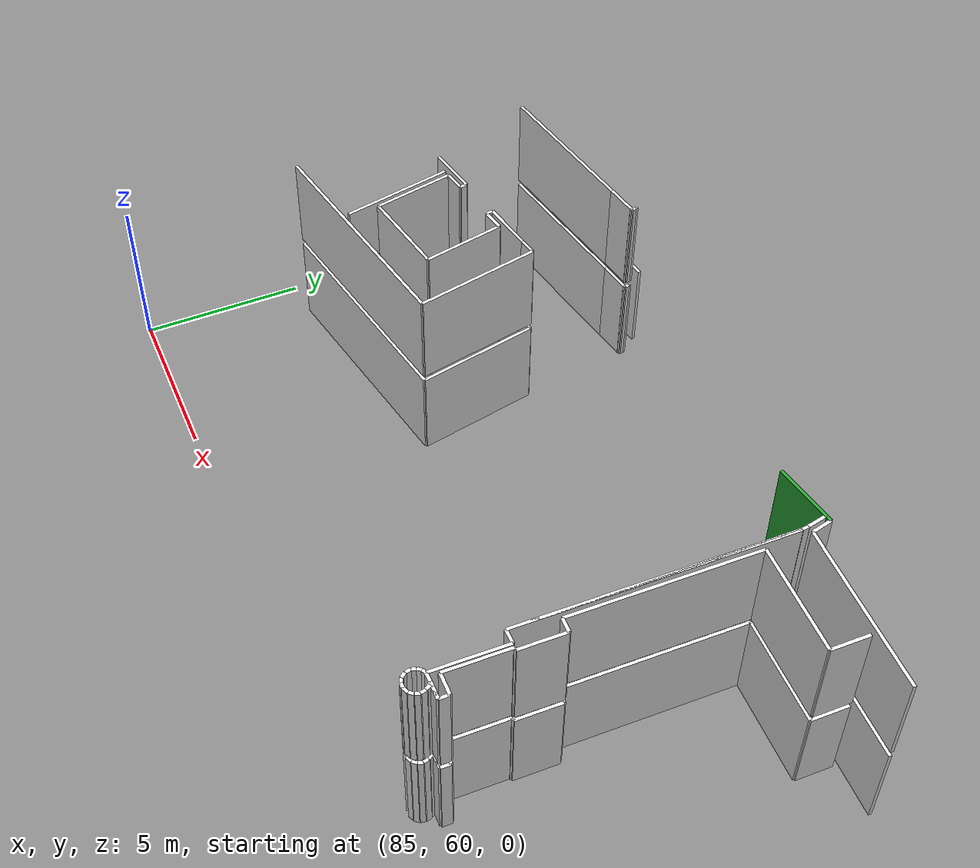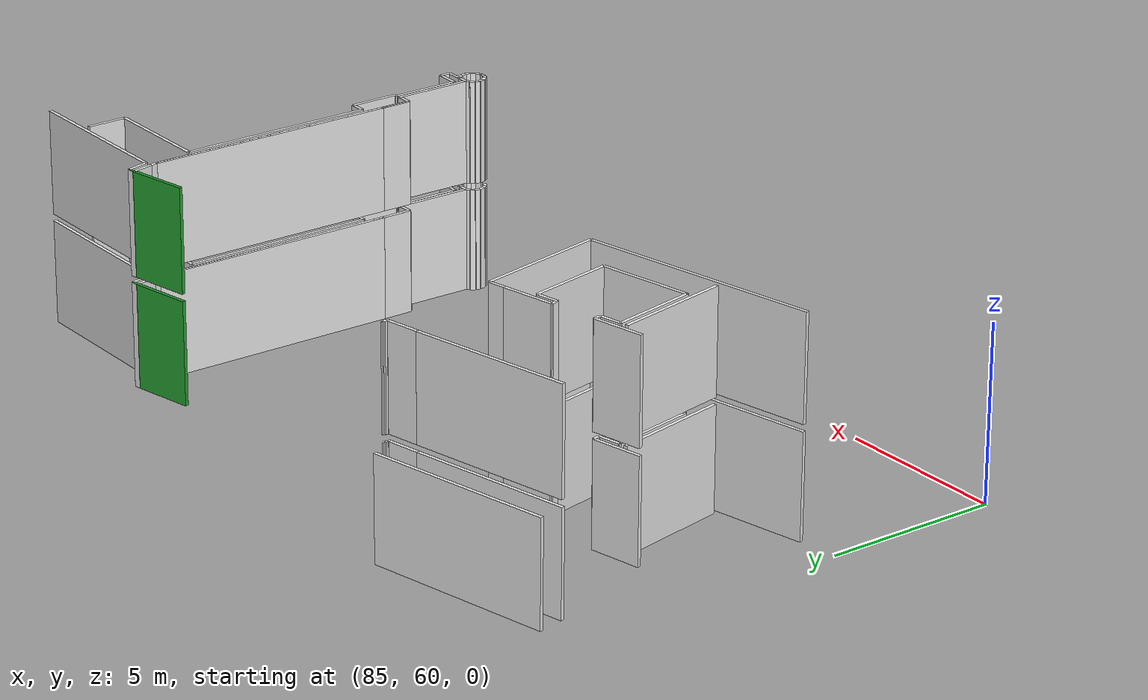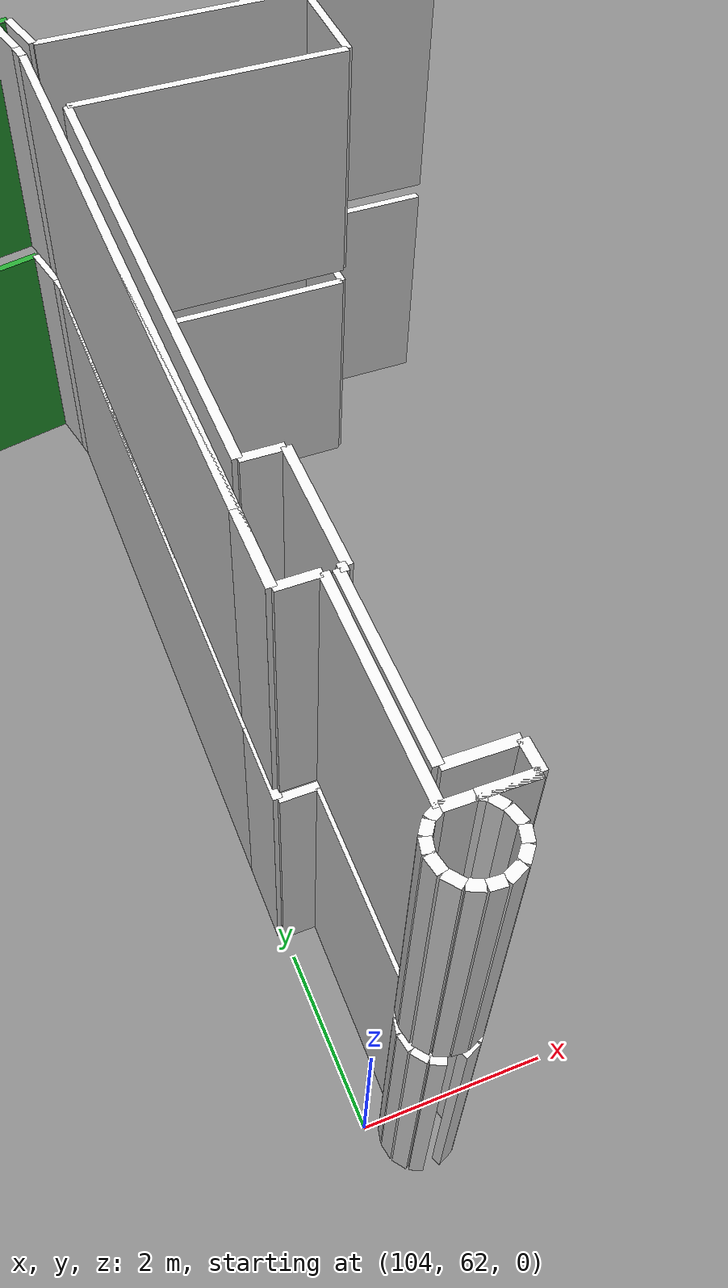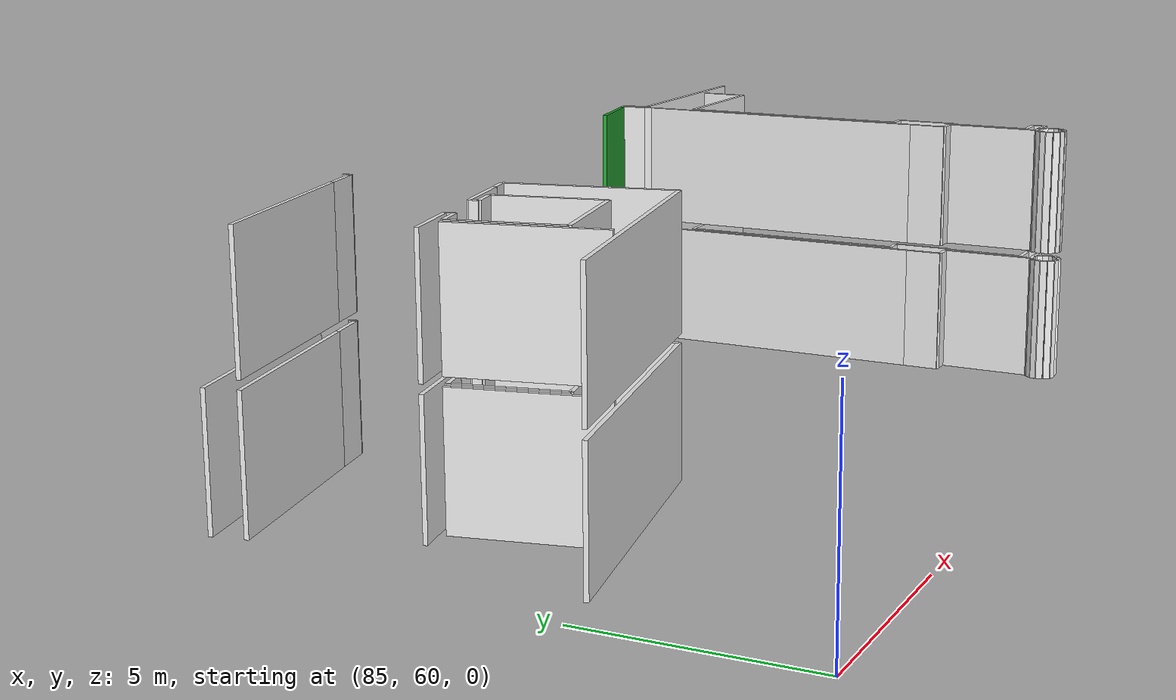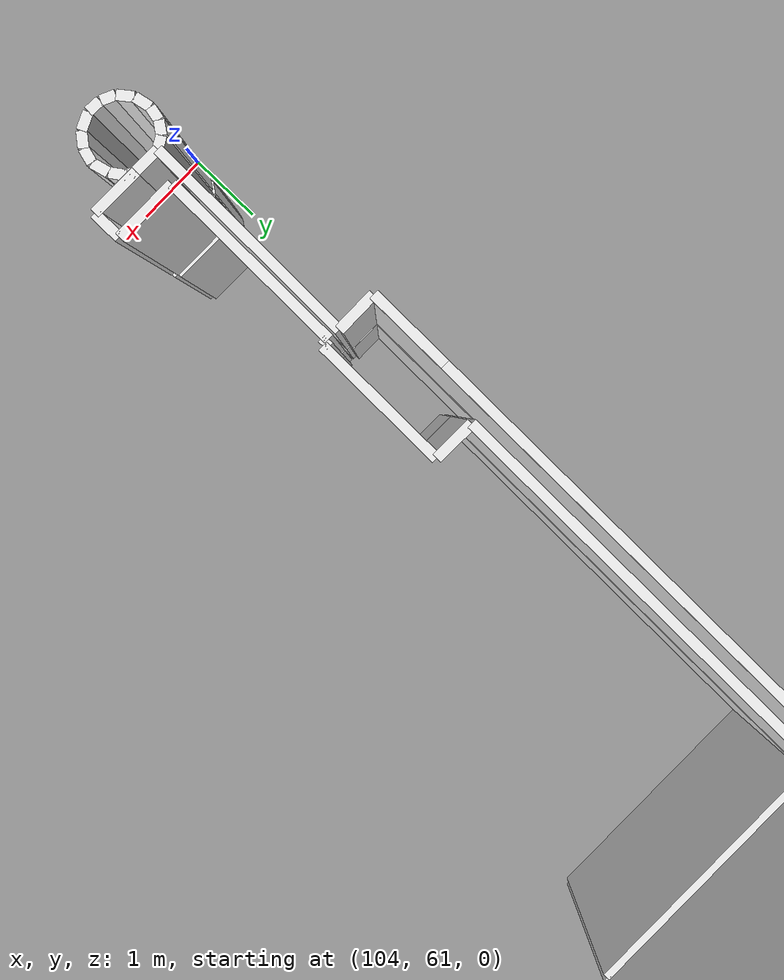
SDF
<sdf version="1.6">
 <world name="default">
  <model name="wall_103.2_73.0_0.0">
   <static>true</static>
   <pose>103.15500000014435 73.02000000025146 1.5 0 0 -2.9552965370366153</pose>
   <link name="link">
    <visual name="visual">
     <geometry><box><size>1.9436306230085285 0.1 3</size></box></geometry>
     <material>
      <script><uri>file://media/materials/scripts/gazebo.material</uri><name>Gazebo/Green</name></script>
     </material>
    </visual>
   </link>
  </model>
  <model name="wall_104.2_72.9_0.0">
   <static>true</static>
   <pose>104.17999999999302 72.9000000001397 1.5 0 0 -1.3415643935301684</pose>
   <link name="link">
    <visual name="visual">
     <geometry><box><size>0.6161168721238449 0.1 3</size></box></geometry>
     <material>
      <script><uri>file://media/materials/scripts/gazebo.material</uri><name>Gazebo/White</name></script>
     </material>
    </visual>
   </link>
  </model>
  <model name="wall_106.7_72.6_0.0">
   <static>true</static>
   <pose>106.70000000001164 72.56499999994412 1.5 0 0 -0.01428474264813742</pose>
   <link name="link">
    <visual name="visual">
     <geometry><box><size>4.900499974519937 0.1 3</size></box></geometry>
     <material>
      <script><uri>file://media/materials/scripts/gazebo.material</uri><name>Gazebo/White</name></script>
     </material>
    </visual>
   </link>
  </model>
  <model name="wall_88.4_67.5_0.0">
   <static>true</static>
   <pose>88.39999999999418 67.51500000013039 1.5 0 0 1.7664587861152812</pose>
   <link name="link">
    <visual name="visual">
     <geometry><box><size>3.394775397645977 0.1 3</size></box></geometry>
     <material>
      <script><uri>file://media/materials/scripts/gazebo.material</uri><name>Gazebo/White</name></script>
     </material>
    </visual>
   </link>
  </model>
  <model name="wall_107.5_71.8_0.0">
   <static>true</static>
   <pose>107.48499999998603 71.78000000002794 1.5 0 0 -1.579568031646505</pose>
   <link name="link">
    <visual name="visual">
     <geometry><box><size>1.1400438589359028 0.1 3</size></box></geometry>
     <material>
      <script><uri>file://media/materials/scripts/gazebo.material</uri><name>Gazebo/White</name></script>
     </material>
    </visual>
   </link>
  </model>
  <model name="wall_105.9_71.2_0.0">
   <static>true</static>
   <pose>105.875 71.22999999998137 1.5 0 0 3.1291322393040306</pose>
   <link name="link">
    <visual name="visual">
     <geometry><box><size>3.2102492114731245 0.1 3</size></box></geometry>
     <material>
      <script><uri>file://media/materials/scripts/gazebo.material</uri><name>Gazebo/White</name></script>
     </material>
    </visual>
   </link>
  </model>
  <model name="wall_104.2_68.5_0.0">
   <static>true</static>
   <pose>104.23000000001048 68.47500000009313 1.5 0 0 -1.585209743017202</pose>
   <link name="link">
    <visual name="visual">
     <geometry><box><size>5.550576546444078 0.1 3</size></box></geometry>
     <material>
      <script><uri>file://media/materials/scripts/gazebo.material</uri><name>Gazebo/White</name></script>
     </material>
    </visual>
   </link>
  </model>
  <model name="wall_104.4_65.7_0.0">
   <static>true</static>
   <pose>104.40499999999884 65.69500000006519 1.5 0 0 -0.023251623373661365</pose>
   <link name="link">
    <visual name="visual">
     <geometry><box><size>0.430116263350778 0.1 3</size></box></geometry>
     <material>
      <script><uri>file://media/materials/scripts/gazebo.material</uri><name>Gazebo/White</name></script>
     </material>
    </visual>
   </link>
  </model>
  <model name="wall_104.6_65.0_0.0">
   <static>true</static>
   <pose>104.60999999998603 64.99499999987893 1.5 0 0 -1.5851838231958704</pose>
   <link name="link">
    <visual name="visual">
     <geometry><box><size>1.390143877576424 0.1 3</size></box></geometry>
     <material>
      <script><uri>file://media/materials/scripts/gazebo.material</uri><name>Gazebo/White</name></script>
     </material>
    </visual>
   </link>
  </model>
  <model name="wall_104.6_64.3_0.0">
   <static>true</static>
   <pose>104.55999999999767 64.29999999981374 1.5 0 0 3.141592653589793</pose>
   <link name="link">
    <visual name="visual">
     <geometry><box><size>0.07999999995809048 0.1 3</size></box></geometry>
     <material>
      <script><uri>file://media/materials/scripts/gazebo.material</uri><name>Gazebo/White</name></script>
     </material>
    </visual>
   </link>
  </model>
  <model name="wall_104.5_63.3_0.0">
   <static>true</static>
   <pose>104.50500000000466 63.34499999997206 1.5 0 0 -1.5865018416432637</pose>
   <link name="link">
    <visual name="visual">
     <geometry><box><size>1.9102355872488803 0.1 3</size></box></geometry>
     <material>
      <script><uri>file://media/materials/scripts/gazebo.material</uri><name>Gazebo/White</name></script>
     </material>
    </visual>
   </link>
  </model>
  <model name="wall_104.8_62.4_0.0">
   <static>true</static>
   <pose>104.81500000000233 62.38500000000931 1.5 0 0 -0.015383402152485081</pose>
   <link name="link">
    <visual name="visual">
     <geometry><box><size>0.6500769185528055 0.1 3</size></box></geometry>
     <material>
      <script><uri>file://media/materials/scripts/gazebo.material</uri><name>Gazebo/White</name></script>
     </material>
    </visual>
   </link>
  </model>
  <model name="wall_88.7_73.8_0.0">
   <static>true</static>
   <pose>88.7050000000163 73.80000000004657 1.5 0 0 0.1955976473787338</pose>
   <link name="link">
    <visual name="visual">
     <geometry><box><size>5.4539985331744765 0.1 3</size></box></geometry>
     <material>
      <script><uri>file://media/materials/scripts/gazebo.material</uri><name>Gazebo/White</name></script>
     </material>
    </visual>
   </link>
  </model>
  <model name="wall_88.5_68.0_0.0">
   <static>true</static>
   <pose>88.51000000000931 67.99499999987893 1.5 0 0 -1.3757760594104678</pose>
   <link name="link">
    <visual name="visual">
     <geometry><box><size>2.4769537744570123 0.1 3</size></box></geometry>
     <material>
      <script><uri>file://media/materials/scripts/gazebo.material</uri><name>Gazebo/White</name></script>
     </material>
    </visual>
   </link>
  </model>
  <model name="wall_90.1_67.0_0.0">
   <static>true</static>
   <pose>90.0799999999872 67.03999999980442 1.5 0 0 0.19305405312718568</pose>
   <link name="link">
    <visual name="visual">
     <geometry><box><size>2.710350530813887 0.1 3</size></box></geometry>
     <material>
      <script><uri>file://media/materials/scripts/gazebo.material</uri><name>Gazebo/White</name></script>
     </material>
    </visual>
   </link>
  </model>
  <model name="wall_91.2_68.5_0.0">
   <static>true</static>
   <pose>91.16499999997905 68.52000000001863 1.5 0 0 1.7689799085101925</pose>
   <link name="link">
    <visual name="visual">
     <geometry><box><size>2.4887145280225713 0.1 3</size></box></geometry>
     <material>
      <script><uri>file://media/materials/scripts/gazebo.material</uri><name>Gazebo/White</name></script>
     </material>
    </visual>
   </link>
  </model>
  <model name="wall_90.6_69.7_0.0">
   <static>true</static>
   <pose>90.60000000000582 69.67500000004657 1.5 0 0 -2.9411940992193695</pose>
   <link name="link">
    <visual name="visual">
     <geometry><box><size>0.6530696747173231 0.1 3</size></box></geometry>
     <material>
      <script><uri>file://media/materials/scripts/gazebo.material</uri><name>Gazebo/White</name></script>
     </material>
    </visual>
   </link>
  </model>
  <model name="wall_88.6_69.3_0.0">
   <static>true</static>
   <pose>88.58999999999651 69.27499999990687 1.5 0 0 -2.9411940999181345</pose>
   <link name="link">
    <visual name="visual">
     <geometry><box><size>0.6530696746246286 0.1 3</size></box></geometry>
     <material>
      <script><uri>file://media/materials/scripts/gazebo.material</uri><name>Gazebo/White</name></script>
     </material>
    </visual>
   </link>
  </model>
  <model name="wall_89.6_65.8_0.0">
   <static>true</static>
   <pose>89.55999999999767 65.81000000005588 1.5 0 0 0.19515842716344076</pose>
   <link name="link">
    <visual name="visual">
     <geometry><box><size>7.013130542131383 0.1 3</size></box></geometry>
     <material>
      <script><uri>file://media/materials/scripts/gazebo.material</uri><name>Gazebo/White</name></script>
     </material>
    </visual>
   </link>
  </model>
  <model name="wall_92.6_68.4_0.0">
   <static>true</static>
   <pose>92.63000000000466 68.35000000009313 1.5 0 0 1.767157760861028</pose>
   <link name="link">
    <visual name="visual">
     <geometry><box><size>3.7928880814026247 0.1 3</size></box></geometry>
     <material>
      <script><uri>file://media/materials/scripts/gazebo.material</uri><name>Gazebo/White</name></script>
     </material>
    </visual>
   </link>
  </model>
  <model name="wall_92.0_70.2_0.0">
   <static>true</static>
   <pose>92.01500000001397 70.15999999991618 1.5 0 0 -2.9402755450289626</pose>
   <link name="link">
    <visual name="visual">
     <geometry><box><size>0.5000999900114971 0.1 3</size></box></geometry>
     <material>
      <script><uri>file://media/materials/scripts/gazebo.material</uri><name>Gazebo/White</name></script>
     </material>
    </visual>
   </link>
  </model>
  <model name="wall_91.0_70.0_0.0">
   <static>true</static>
   <pose>91.00500000000466 69.95999999996275 1.5 0 0 -2.94797066085453</pose>
   <link name="link">
    <visual name="visual">
     <geometry><box><size>1.5591343752139315 0.1 3</size></box></geometry>
     <material>
      <script><uri>file://media/materials/scripts/gazebo.material</uri><name>Gazebo/White</name></script>
     </material>
    </visual>
   </link>
  </model>
  <model name="wall_90.3_69.7_0.0">
   <static>true</static>
   <pose>90.26000000000931 69.70999999996275 1.5 0 0 -1.373400766945016</pose>
   <link name="link">
    <visual name="visual">
     <geometry><box><size>0.20396078073366466 0.1 3</size></box></geometry>
     <material>
      <script><uri>file://media/materials/scripts/gazebo.material</uri><name>Gazebo/White</name></script>
     </material>
    </visual>
   </link>
  </model>
  <model name="wall_88.9_69.4_0.0">
   <static>true</static>
   <pose>88.88999999998487 69.43999999994412 1.5 0 0 1.7681918863649329</pose>
   <link name="link">
    <visual name="visual">
     <geometry><box><size>0.2039607807222492 0.1 3</size></box></geometry>
     <material>
      <script><uri>file://media/materials/scripts/gazebo.material</uri><name>Gazebo/White</name></script>
     </material>
    </visual>
   </link>
  </model>
  <model name="wall_88.1_69.4_0.0">
   <static>true</static>
   <pose>88.13000000000466 69.39500000001863 1.5 0 0 -2.948098244273777</pose>
   <link name="link">
    <visual name="visual">
     <geometry><box><size>1.508144555394632 0.1 3</size></box></geometry>
     <material>
      <script><uri>file://media/materials/scripts/gazebo.material</uri><name>Gazebo/White</name></script>
     </material>
    </visual>
   </link>
  </model>
  <model name="wall_88.5_73.0_0.0">
   <static>true</static>
   <pose>88.48999999999069 72.98999999999069 1.5 0 0 0.19656292065681916</pose>
   <link name="link">
    <visual name="visual">
     <geometry><box><size>4.710711199031065 0.1 3</size></box></geometry>
     <material>
      <script><uri>file://media/materials/scripts/gazebo.material</uri><name>Gazebo/White</name></script>
     </material>
    </visual>
   </link>
  </model>
  <model name="wall_91.3_73.5_0.0">
   <static>true</static>
   <pose>91.26499999998487 73.54000000003725 1.5 0 0 0.19118445928953165</pose>
   <link name="link">
    <visual name="visual">
     <geometry><box><size>0.9472592041673281 0.1 3</size></box></geometry>
     <material>
      <script><uri>file://media/materials/scripts/gazebo.material</uri><name>Gazebo/White</name></script>
     </material>
    </visual>
   </link>
  </model>
  <model name="wall_91.8_73.6_0.0">
   <static>true</static>
   <pose>91.75500000000466 73.63999999989755 1.5 0 0 0.3805063771123649</pose>
   <link name="link">
    <visual name="visual">
     <geometry><box><size>0.0538516481214983 0.1 3</size></box></geometry>
     <material>
      <script><uri>file://media/materials/scripts/gazebo.material</uri><name>Gazebo/White</name></script>
     </material>
    </visual>
   </link>
  </model>
  <model name="wall_91.8_73.7_0.0">
   <static>true</static>
   <pose>91.76500000001397 73.70999999996275 1.5 0 0 1.8157749899217608</pose>
   <link name="link">
    <visual name="visual">
     <geometry><box><size>0.12369316888372806 0.1 3</size></box></geometry>
     <material>
      <script><uri>file://media/materials/scripts/gazebo.material</uri><name>Gazebo/White</name></script>
     </material>
    </visual>
   </link>
  </model>
  <model name="wall_91.8_73.8_0.0">
   <static>true</static>
   <pose>91.77499999999418 73.77499999990687 1.5 0 0 0.197395555596244</pose>
   <link name="link">
    <visual name="visual">
     <geometry><box><size>0.050990195080677016 0.1 3</size></box></geometry>
     <material>
      <script><uri>file://media/materials/scripts/gazebo.material</uri><name>Gazebo/White</name></script>
     </material>
    </visual>
   </link>
  </model>
  <model name="wall_104.0_73.2_0.0">
   <static>true</static>
   <pose>104.01999999998952 73.18500000005588 1.5 0 0 -2.9764439747593046</pose>
   <link name="link">
    <visual name="visual">
     <geometry><box><size>0.18248287594492707 0.1 3</size></box></geometry>
     <material>
      <script><uri>file://media/materials/scripts/gazebo.material</uri><name>Gazebo/White</name></script>
     </material>
    </visual>
   </link>
  </model>
  <model name="wall_104.0_72.9_0.0">
   <static>true</static>
   <pose>103.98999999999069 72.875 1.5 0 0 -1.3701434494332612</pose>
   <link name="link">
    <visual name="visual">
     <geometry><box><size>0.6020797287926647 0.1 3</size></box></geometry>
     <material>
      <script><uri>file://media/materials/scripts/gazebo.material</uri><name>Gazebo/White</name></script>
     </material>
    </visual>
   </link>
  </model>
  <model name="wall_104.1_72.5_0.0">
   <static>true</static>
   <pose>104.06500000000233 72.48500000010245 1.5 0 0 -1.4141944496240997</pose>
   <link name="link">
    <visual name="visual">
     <geometry><box><size>0.19235384056587543 0.1 3</size></box></geometry>
     <material>
      <script><uri>file://media/materials/scripts/gazebo.material</uri><name>Gazebo/White</name></script>
     </material>
    </visual>
   </link>
  </model>
  <model name="wall_104.0_68.8_0.0">
   <static>true</static>
   <pose>104.02999999999884 68.78500000014901 1.5 0 0 -1.5846650630720618</pose>
   <link name="link">
    <visual name="visual">
     <geometry><box><size>7.2106934478918046 0.1 3</size></box></geometry>
     <material>
      <script><uri>file://media/materials/scripts/gazebo.material</uri><name>Gazebo/White</name></script>
     </material>
    </visual>
   </link>
  </model>
  <model name="wall_104.0_64.7_0.0">
   <static>true</static>
   <pose>103.97499999997672 64.74500000011176 1.5 0 0 -1.5822900735191543</pose>
   <link name="link">
    <visual name="visual">
     <geometry><box><size>0.8700574694781066 0.1 3</size></box></geometry>
     <material>
      <script><uri>file://media/materials/scripts/gazebo.material</uri><name>Gazebo/White</name></script>
     </material>
    </visual>
   </link>
  </model>
  <model name="wall_104.2_64.3_0.0">
   <static>true</static>
   <pose>104.18499999999767 64.31000000005588 1.5 0 0 0.0</pose>
   <link name="link">
    <visual name="visual">
     <geometry><box><size>0.43000000005122274 0.1 3</size></box></geometry>
     <material>
      <script><uri>file://media/materials/scripts/gazebo.material</uri><name>Gazebo/White</name></script>
     </material>
    </visual>
   </link>
  </model>
  <model name="wall_104.4_63.2_0.0">
   <static>true</static>
   <pose>104.38000000000466 63.199999999953434 1.5 0 0 -1.5888123953640647</pose>
   <link name="link">
    <visual name="visual">
     <geometry><box><size>2.2203603313229805 0.1 3</size></box></geometry>
     <material>
      <script><uri>file://media/materials/scripts/gazebo.material</uri><name>Gazebo/White</name></script>
     </material>
    </visual>
   </link>
  </model>
  <model name="wall_104.3_62.1_0.0">
   <static>true</static>
   <pose>104.30499999999302 62.05999999982305 1.5 0 0 -2.642245931464764</pose>
   <link name="link">
    <visual name="visual">
     <geometry><box><size>0.12529964087591056 0.1 3</size></box></geometry>
     <material>
      <script><uri>file://media/materials/scripts/gazebo.material</uri><name>Gazebo/White</name></script>
     </material>
    </visual>
   </link>
  </model>
  <model name="wall_104.2_62.0_0.0">
   <static>true</static>
   <pose>104.20999999999185 61.9749999998603 1.5 0 0 -2.199592613871065</pose>
   <link name="link">
    <visual name="visual">
     <geometry><box><size>0.13601470499149335 0.1 3</size></box></geometry>
     <material>
      <script><uri>file://media/materials/scripts/gazebo.material</uri><name>Gazebo/White</name></script>
     </material>
    </visual>
   </link>
  </model>
  <model name="wall_104.2_61.9_0.0">
   <static>true</static>
   <pose>104.15499999999884 61.85499999998137 1.5 0 0 -1.7975951748160817</pose>
   <link name="link">
    <visual name="visual">
     <geometry><box><size>0.13341664052556057 0.1 3</size></box></geometry>
     <material>
      <script><uri>file://media/materials/scripts/gazebo.material</uri><name>Gazebo/White</name></script>
     </material>
    </visual>
   </link>
  </model>
  <model name="wall_104.2_61.7_0.0">
   <static>true</static>
   <pose>104.15499999999884 61.70999999996275 1.5 0 0 -1.3854483771506443</pose>
   <link name="link">
    <visual name="visual">
     <geometry><box><size>0.16278820610187839 0.1 3</size></box></geometry>
     <material>
      <script><uri>file://media/materials/scripts/gazebo.material</uri><name>Gazebo/White</name></script>
     </material>
    </visual>
   </link>
  </model>
  <model name="wall_104.2_61.6_0.0">
   <static>true</static>
   <pose>104.22000000000116 61.56499999994412 1.5 0 0 -0.9151006999691199</pose>
   <link name="link">
    <visual name="visual">
     <geometry><box><size>0.16401219460127853 0.1 3</size></box></geometry>
     <material>
      <script><uri>file://media/materials/scripts/gazebo.material</uri><name>Gazebo/White</name></script>
     </material>
    </visual>
   </link>
  </model>
  <model name="wall_104.3_61.5_0.0">
   <static>true</static>
   <pose>104.33500000002095 61.46999999997206 1.5 0 0 -0.4324077759112656</pose>
   <link name="link">
    <visual name="visual">
     <geometry><box><size>0.14317821066040826 0.1 3</size></box></geometry>
     <material>
      <script><uri>file://media/materials/scripts/gazebo.material</uri><name>Gazebo/White</name></script>
     </material>
    </visual>
   </link>
  </model>
  <model name="wall_104.6_61.5_0.0">
   <static>true</static>
   <pose>104.61999999999534 61.46500000008382 1.5 0 0 0.41241044064316335</pose>
   <link name="link">
    <visual name="visual">
     <geometry><box><size>0.17464249192840064 0.1 3</size></box></geometry>
     <material>
      <script><uri>file://media/materials/scripts/gazebo.material</uri><name>Gazebo/White</name></script>
     </material>
    </visual>
   </link>
  </model>
  <model name="wall_104.8_61.6_0.0">
   <static>true</static>
   <pose>104.75 61.56000000005588 1.5 0 0 0.8760580511707278</pose>
   <link name="link">
    <visual name="visual">
     <geometry><box><size>0.15620499358908305 0.1 3</size></box></geometry>
     <material>
      <script><uri>file://media/materials/scripts/gazebo.material</uri><name>Gazebo/White</name></script>
     </material>
    </visual>
   </link>
  </model>
  <model name="wall_104.8_61.7_0.0">
   <static>true</static>
   <pose>104.82000000000698 61.68999999994412 1.5 0 0 1.292496666911179</pose>
   <link name="link">
    <visual name="visual">
     <geometry><box><size>0.1456021974734685 0.1 3</size></box></geometry>
     <material>
      <script><uri>file://media/materials/scripts/gazebo.material</uri><name>Gazebo/White</name></script>
     </material>
    </visual>
   </link>
  </model>
  <model name="wall_104.8_61.8_0.0">
   <static>true</static>
   <pose>104.82000000000698 61.83999999985099 1.5 0 0 1.8157749899217608</pose>
   <link name="link">
    <visual name="visual">
     <geometry><box><size>0.16492422517830407 0.1 3</size></box></geometry>
     <material>
      <script><uri>file://media/materials/scripts/gazebo.material</uri><name>Gazebo/White</name></script>
     </material>
    </visual>
   </link>
  </model>
  <model name="wall_104.8_62.0_0.0">
   <static>true</static>
   <pose>104.75500000000466 61.984999999869615 1.5 0 0 2.1763409906326974</pose>
   <link name="link">
    <visual name="visual">
     <geometry><box><size>0.1581138828979777 0.1 3</size></box></geometry>
     <material>
      <script><uri>file://media/materials/scripts/gazebo.material</uri><name>Gazebo/White</name></script>
     </material>
    </visual>
   </link>
  </model>
  <model name="wall_104.7_62.1_0.0">
   <static>true</static>
   <pose>104.6700000000128 62.06999999983236 1.5 0 0 2.6779450442979487</pose>
   <link name="link">
    <visual name="visual">
     <geometry><box><size>0.0894427191312291 0.1 3</size></box></geometry>
     <material>
      <script><uri>file://media/materials/scripts/gazebo.material</uri><name>Gazebo/White</name></script>
     </material>
    </visual>
   </link>
  </model>
  <model name="wall_104.9_62.1_0.0">
   <static>true</static>
   <pose>104.88500000000931 62.08499999996275 1.5 0 0 -0.01960533041874575</pose>
   <link name="link">
    <visual name="visual">
     <geometry><box><size>0.5100980297992036 0.1 3</size></box></geometry>
     <material>
      <script><uri>file://media/materials/scripts/gazebo.material</uri><name>Gazebo/White</name></script>
     </material>
    </visual>
   </link>
  </model>
  <model name="wall_105.1_62.2_0.0">
   <static>true</static>
   <pose>105.14000000001397 62.22999999998137 1.5 0 0 1.5707963267948966</pose>
   <link name="link">
    <visual name="visual">
     <geometry><box><size>0.2999999998137355 0.1 3</size></box></geometry>
     <material>
      <script><uri>file://media/materials/scripts/gazebo.material</uri><name>Gazebo/White</name></script>
     </material>
    </visual>
   </link>
  </model>
  <model name="wall_104.0_68.4_0.0">
   <static>true</static>
   <pose>104.02499999999418 68.35000000009313 1.5 0 0 -1.5844093472281489</pose>
   <link name="link">
    <visual name="visual">
     <geometry><box><size>8.080748727761168 0.1 3</size></box></geometry>
     <material>
      <script><uri>file://media/materials/scripts/gazebo.material</uri><name>Gazebo/White</name></script>
     </material>
    </visual>
   </link>
  </model>
  <model name="wall_104.8_62.1_0.0">
   <static>true</static>
   <pose>104.75 62.08499999996275 1.5 0 0 -0.012819810185927727</pose>
   <link name="link">
    <visual name="visual">
     <geometry><box><size>0.7800640999553278 0.1 3</size></box></geometry>
     <material>
      <script><uri>file://media/materials/scripts/gazebo.material</uri><name>Gazebo/White</name></script>
     </material>
    </visual>
   </link>
  </model>
  <model name="wall_103.2_73.0_3.2">
   <static>true</static>
   <pose>103.15500000014435 73.02000000025146 4.7 0 0 -2.9552965370366153</pose>
   <link name="link">
    <visual name="visual">
     <geometry><box><size>1.9436306230085285 0.1 3</size></box></geometry>
     <material>
      <script><uri>file://media/materials/scripts/gazebo.material</uri><name>Gazebo/Green</name></script>
     </material>
    </visual>
   </link>
  </model>
  <model name="wall_104.2_72.9_3.2">
   <static>true</static>
   <pose>104.17999999999302 72.9000000001397 4.7 0 0 -1.3415643935301684</pose>
   <link name="link">
    <visual name="visual">
     <geometry><box><size>0.6161168721238449 0.1 3</size></box></geometry>
     <material>
      <script><uri>file://media/materials/scripts/gazebo.material</uri><name>Gazebo/White</name></script>
     </material>
    </visual>
   </link>
  </model>
  <model name="wall_106.7_72.6_3.2">
   <static>true</static>
   <pose>106.70000000001164 72.56499999994412 4.7 0 0 -0.01428474264813742</pose>
   <link name="link">
    <visual name="visual">
     <geometry><box><size>4.900499974519937 0.1 3</size></box></geometry>
     <material>
      <script><uri>file://media/materials/scripts/gazebo.material</uri><name>Gazebo/White</name></script>
     </material>
    </visual>
   </link>
  </model>
  <model name="wall_88.4_67.5_3.2">
   <static>true</static>
   <pose>88.39999999999418 67.51500000013039 4.7 0 0 1.7664587861152812</pose>
   <link name="link">
    <visual name="visual">
     <geometry><box><size>3.394775397645977 0.1 3</size></box></geometry>
     <material>
      <script><uri>file://media/materials/scripts/gazebo.material</uri><name>Gazebo/White</name></script>
     </material>
    </visual>
   </link>
  </model>
  <model name="wall_107.5_71.8_3.2">
   <static>true</static>
   <pose>107.48499999998603 71.78000000002794 4.7 0 0 -1.579568031646505</pose>
   <link name="link">
    <visual name="visual">
     <geometry><box><size>1.1400438589359028 0.1 3</size></box></geometry>
     <material>
      <script><uri>file://media/materials/scripts/gazebo.material</uri><name>Gazebo/White</name></script>
     </material>
    </visual>
   </link>
  </model>
  <model name="wall_105.9_71.2_3.2">
   <static>true</static>
   <pose>105.875 71.22999999998137 4.7 0 0 3.1291322393040306</pose>
   <link name="link">
    <visual name="visual">
     <geometry><box><size>3.2102492114731245 0.1 3</size></box></geometry>
     <material>
      <script><uri>file://media/materials/scripts/gazebo.material</uri><name>Gazebo/White</name></script>
     </material>
    </visual>
   </link>
  </model>
  <model name="wall_104.2_68.5_3.2">
   <static>true</static>
   <pose>104.23000000001048 68.47500000009313 4.7 0 0 -1.585209743017202</pose>
   <link name="link">
    <visual name="visual">
     <geometry><box><size>5.550576546444078 0.1 3</size></box></geometry>
     <material>
      <script><uri>file://media/materials/scripts/gazebo.material</uri><name>Gazebo/White</name></script>
     </material>
    </visual>
   </link>
  </model>
  <model name="wall_104.4_65.7_3.2">
   <static>true</static>
   <pose>104.40499999999884 65.69500000006519 4.7 0 0 -0.023251623373661365</pose>
   <link name="link">
    <visual name="visual">
     <geometry><box><size>0.430116263350778 0.1 3</size></box></geometry>
     <material>
      <script><uri>file://media/materials/scripts/gazebo.material</uri><name>Gazebo/White</name></script>
     </material>
    </visual>
   </link>
  </model>
  <model name="wall_104.6_65.0_3.2">
   <static>true</static>
   <pose>104.60999999998603 64.99499999987893 4.7 0 0 -1.5851838231958704</pose>
   <link name="link">
    <visual name="visual">
     <geometry><box><size>1.390143877576424 0.1 3</size></box></geometry>
     <material>
      <script><uri>file://media/materials/scripts/gazebo.material</uri><name>Gazebo/White</name></script>
     </material>
    </visual>
   </link>
  </model>
  <model name="wall_104.6_64.3_3.2">
   <static>true</static>
   <pose>104.55999999999767 64.29999999981374 4.7 0 0 3.141592653589793</pose>
   <link name="link">
    <visual name="visual">
     <geometry><box><size>0.07999999995809048 0.1 3</size></box></geometry>
     <material>
      <script><uri>file://media/materials/scripts/gazebo.material</uri><name>Gazebo/White</name></script>
     </material>
    </visual>
   </link>
  </model>
  <model name="wall_104.5_63.3_3.2">
   <static>true</static>
   <pose>104.50500000000466 63.34499999997206 4.7 0 0 -1.5865018416432637</pose>
   <link name="link">
    <visual name="visual">
     <geometry><box><size>1.9102355872488803 0.1 3</size></box></geometry>
     <material>
      <script><uri>file://media/materials/scripts/gazebo.material</uri><name>Gazebo/White</name></script>
     </material>
    </visual>
   </link>
  </model>
  <model name="wall_104.8_62.4_3.2">
   <static>true</static>
   <pose>104.81500000000233 62.38500000000931 4.7 0 0 -0.015383402152485081</pose>
   <link name="link">
    <visual name="visual">
     <geometry><box><size>0.6500769185528055 0.1 3</size></box></geometry>
     <material>
      <script><uri>file://media/materials/scripts/gazebo.material</uri><name>Gazebo/White</name></script>
     </material>
    </visual>
   </link>
  </model>
  <model name="wall_88.5_68.0_3.2">
   <static>true</static>
   <pose>88.51000000000931 67.99499999987893 4.7 0 0 -1.3757760594104678</pose>
   <link name="link">
    <visual name="visual">
     <geometry><box><size>2.4769537744570123 0.1 3</size></box></geometry>
     <material>
      <script><uri>file://media/materials/scripts/gazebo.material</uri><name>Gazebo/White</name></script>
     </material>
    </visual>
   </link>
  </model>
  <model name="wall_90.1_67.0_3.2">
   <static>true</static>
   <pose>90.0799999999872 67.03999999980442 4.7 0 0 0.19305405312718568</pose>
   <link name="link">
    <visual name="visual">
     <geometry><box><size>2.710350530813887 0.1 3</size></box></geometry>
     <material>
      <script><uri>file://media/materials/scripts/gazebo.material</uri><name>Gazebo/White</name></script>
     </material>
    </visual>
   </link>
  </model>
  <model name="wall_91.2_68.5_3.2">
   <static>true</static>
   <pose>91.16499999997905 68.52000000001863 4.7 0 0 1.7689799085101925</pose>
   <link name="link">
    <visual name="visual">
     <geometry><box><size>2.4887145280225713 0.1 3</size></box></geometry>
     <material>
      <script><uri>file://media/materials/scripts/gazebo.material</uri><name>Gazebo/White</name></script>
     </material>
    </visual>
   </link>
  </model>
  <model name="wall_90.6_69.7_3.2">
   <static>true</static>
   <pose>90.60000000000582 69.67500000004657 4.7 0 0 -2.9411940992193695</pose>
   <link name="link">
    <visual name="visual">
     <geometry><box><size>0.6530696747173231 0.1 3</size></box></geometry>
     <material>
      <script><uri>file://media/materials/scripts/gazebo.material</uri><name>Gazebo/White</name></script>
     </material>
    </visual>
   </link>
  </model>
  <model name="wall_88.6_69.3_3.2">
   <static>true</static>
   <pose>88.58999999999651 69.27499999990687 4.7 0 0 -2.9411940999181345</pose>
   <link name="link">
    <visual name="visual">
     <geometry><box><size>0.6530696746246286 0.1 3</size></box></geometry>
     <material>
      <script><uri>file://media/materials/scripts/gazebo.material</uri><name>Gazebo/White</name></script>
     </material>
    </visual>
   </link>
  </model>
  <model name="wall_89.6_65.8_3.2">
   <static>true</static>
   <pose>89.55999999999767 65.81000000005588 4.7 0 0 0.19515842716344076</pose>
   <link name="link">
    <visual name="visual">
     <geometry><box><size>7.013130542131383 0.1 3</size></box></geometry>
     <material>
      <script><uri>file://media/materials/scripts/gazebo.material</uri><name>Gazebo/White</name></script>
     </material>
    </visual>
   </link>
  </model>
  <model name="wall_92.6_68.4_3.2">
   <static>true</static>
   <pose>92.63000000000466 68.35000000009313 4.7 0 0 1.767157760861028</pose>
   <link name="link">
    <visual name="visual">
     <geometry><box><size>3.7928880814026247 0.1 3</size></box></geometry>
     <material>
      <script><uri>file://media/materials/scripts/gazebo.material</uri><name>Gazebo/White</name></script>
     </material>
    </visual>
   </link>
  </model>
  <model name="wall_92.0_70.2_3.2">
   <static>true</static>
   <pose>92.01500000001397 70.15999999991618 4.7 0 0 -2.9402755450289626</pose>
   <link name="link">
    <visual name="visual">
     <geometry><box><size>0.5000999900114971 0.1 3</size></box></geometry>
     <material>
      <script><uri>file://media/materials/scripts/gazebo.material</uri><name>Gazebo/White</name></script>
     </material>
    </visual>
   </link>
  </model>
  <model name="wall_91.0_70.0_3.2">
   <static>true</static>
   <pose>91.00500000000466 69.95999999996275 4.7 0 0 -2.94797066085453</pose>
   <link name="link">
    <visual name="visual">
     <geometry><box><size>1.5591343752139315 0.1 3</size></box></geometry>
     <material>
      <script><uri>file://media/materials/scripts/gazebo.material</uri><name>Gazebo/White</name></script>
     </material>
    </visual>
   </link>
  </model>
  <model name="wall_90.3_69.7_3.2">
   <static>true</static>
   <pose>90.26000000000931 69.70999999996275 4.7 0 0 -1.373400766945016</pose>
   <link name="link">
    <visual name="visual">
     <geometry><box><size>0.20396078073366466 0.1 3</size></box></geometry>
     <material>
      <script><uri>file://media/materials/scripts/gazebo.material</uri><name>Gazebo/White</name></script>
     </material>
    </visual>
   </link>
  </model>
  <model name="wall_88.9_69.4_3.2">
   <static>true</static>
   <pose>88.88999999998487 69.43999999994412 4.7 0 0 1.7681918863649329</pose>
   <link name="link">
    <visual name="visual">
     <geometry><box><size>0.2039607807222492 0.1 3</size></box></geometry>
     <material>
      <script><uri>file://media/materials/scripts/gazebo.material</uri><name>Gazebo/White</name></script>
     </material>
    </visual>
   </link>
  </model>
  <model name="wall_88.1_69.4_3.2">
   <static>true</static>
   <pose>88.13000000000466 69.39500000001863 4.7 0 0 -2.948098244273777</pose>
   <link name="link">
    <visual name="visual">
     <geometry><box><size>1.508144555394632 0.1 3</size></box></geometry>
     <material>
      <script><uri>file://media/materials/scripts/gazebo.material</uri><name>Gazebo/White</name></script>
     </material>
    </visual>
   </link>
  </model>
  <model name="wall_88.5_73.0_3.2">
   <static>true</static>
   <pose>88.48999999999069 72.98999999999069 4.7 0 0 0.19656292065681916</pose>
   <link name="link">
    <visual name="visual">
     <geometry><box><size>4.710711199031065 0.1 3</size></box></geometry>
     <material>
      <script><uri>file://media/materials/scripts/gazebo.material</uri><name>Gazebo/White</name></script>
     </material>
    </visual>
   </link>
  </model>
  <model name="wall_91.3_73.5_3.2">
   <static>true</static>
   <pose>91.26499999998487 73.54000000003725 4.7 0 0 0.19118445928953165</pose>
   <link name="link">
    <visual name="visual">
     <geometry><box><size>0.9472592041673281 0.1 3</size></box></geometry>
     <material>
      <script><uri>file://media/materials/scripts/gazebo.material</uri><name>Gazebo/White</name></script>
     </material>
    </visual>
   </link>
  </model>
  <model name="wall_91.8_73.6_3.2">
   <static>true</static>
   <pose>91.75500000000466 73.63999999989755 4.7 0 0 0.3805063771123649</pose>
   <link name="link">
    <visual name="visual">
     <geometry><box><size>0.0538516481214983 0.1 3</size></box></geometry>
     <material>
      <script><uri>file://media/materials/scripts/gazebo.material</uri><name>Gazebo/White</name></script>
     </material>
    </visual>
   </link>
  </model>
  <model name="wall_91.8_73.7_3.2">
   <static>true</static>
   <pose>91.76500000001397 73.70999999996275 4.7 0 0 1.8157749899217608</pose>
   <link name="link">
    <visual name="visual">
     <geometry><box><size>0.12369316888372806 0.1 3</size></box></geometry>
     <material>
      <script><uri>file://media/materials/scripts/gazebo.material</uri><name>Gazebo/White</name></script>
     </material>
    </visual>
   </link>
  </model>
  <model name="wall_91.8_73.8_3.2">
   <static>true</static>
   <pose>91.77499999999418 73.77499999990687 4.7 0 0 0.197395555596244</pose>
   <link name="link">
    <visual name="visual">
     <geometry><box><size>0.050990195080677016 0.1 3</size></box></geometry>
     <material>
      <script><uri>file://media/materials/scripts/gazebo.material</uri><name>Gazebo/White</name></script>
     </material>
    </visual>
   </link>
  </model>
  <model name="wall_104.0_73.2_3.2">
   <static>true</static>
   <pose>104.01999999998952 73.18500000005588 4.7 0 0 -2.9764439747593046</pose>
   <link name="link">
    <visual name="visual">
     <geometry><box><size>0.18248287594492707 0.1 3</size></box></geometry>
     <material>
      <script><uri>file://media/materials/scripts/gazebo.material</uri><name>Gazebo/White</name></script>
     </material>
    </visual>
   </link>
  </model>
  <model name="wall_104.0_72.9_3.2">
   <static>true</static>
   <pose>103.98999999999069 72.875 4.7 0 0 -1.3701434494332612</pose>
   <link name="link">
    <visual name="visual">
     <geometry><box><size>0.6020797287926647 0.1 3</size></box></geometry>
     <material>
      <script><uri>file://media/materials/scripts/gazebo.material</uri><name>Gazebo/White</name></script>
     </material>
    </visual>
   </link>
  </model>
  <model name="wall_104.1_72.5_3.2">
   <static>true</static>
   <pose>104.06500000000233 72.48500000010245 4.7 0 0 -1.4141944496240997</pose>
   <link name="link">
    <visual name="visual">
     <geometry><box><size>0.19235384056587543 0.1 3</size></box></geometry>
     <material>
      <script><uri>file://media/materials/scripts/gazebo.material</uri><name>Gazebo/White</name></script>
     </material>
    </visual>
   </link>
  </model>
  <model name="wall_104.0_68.8_3.2">
   <static>true</static>
   <pose>104.02999999999884 68.78500000014901 4.7 0 0 -1.5846650630720618</pose>
   <link name="link">
    <visual name="visual">
     <geometry><box><size>7.2106934478918046 0.1 3</size></box></geometry>
     <material>
      <script><uri>file://media/materials/scripts/gazebo.material</uri><name>Gazebo/White</name></script>
     </material>
    </visual>
   </link>
  </model>
  <model name="wall_104.0_64.7_3.2">
   <static>true</static>
   <pose>103.97499999997672 64.74500000011176 4.7 0 0 -1.5822900735191543</pose>
   <link name="link">
    <visual name="visual">
     <geometry><box><size>0.8700574694781066 0.1 3</size></box></geometry>
     <material>
      <script><uri>file://media/materials/scripts/gazebo.material</uri><name>Gazebo/White</name></script>
     </material>
    </visual>
   </link>
  </model>
  <model name="wall_104.2_64.3_3.2">
   <static>true</static>
   <pose>104.18499999999767 64.31000000005588 4.7 0 0 0.0</pose>
   <link name="link">
    <visual name="visual">
     <geometry><box><size>0.43000000005122274 0.1 3</size></box></geometry>
     <material>
      <script><uri>file://media/materials/scripts/gazebo.material</uri><name>Gazebo/White</name></script>
     </material>
    </visual>
   </link>
  </model>
  <model name="wall_104.4_63.2_3.2">
   <static>true</static>
   <pose>104.38000000000466 63.199999999953434 4.7 0 0 -1.5888123953640647</pose>
   <link name="link">
    <visual name="visual">
     <geometry><box><size>2.2203603313229805 0.1 3</size></box></geometry>
     <material>
      <script><uri>file://media/materials/scripts/gazebo.material</uri><name>Gazebo/White</name></script>
     </material>
    </visual>
   </link>
  </model>
  <model name="wall_104.3_62.1_3.2">
   <static>true</static>
   <pose>104.30499999999302 62.05999999982305 4.7 0 0 -2.642245931464764</pose>
   <link name="link">
    <visual name="visual">
     <geometry><box><size>0.12529964087591056 0.1 3</size></box></geometry>
     <material>
      <script><uri>file://media/materials/scripts/gazebo.material</uri><name>Gazebo/White</name></script>
     </material>
    </visual>
   </link>
  </model>
  <model name="wall_104.2_62.0_3.2">
   <static>true</static>
   <pose>104.20999999999185 61.9749999998603 4.7 0 0 -2.199592613871065</pose>
   <link name="link">
    <visual name="visual">
     <geometry><box><size>0.13601470499149335 0.1 3</size></box></geometry>
     <material>
      <script><uri>file://media/materials/scripts/gazebo.material</uri><name>Gazebo/White</name></script>
     </material>
    </visual>
   </link>
  </model>
  <model name="wall_104.2_61.9_3.2">
   <static>true</static>
   <pose>104.15499999999884 61.85499999998137 4.7 0 0 -1.7975951748160817</pose>
   <link name="link">
    <visual name="visual">
     <geometry><box><size>0.13341664052556057 0.1 3</size></box></geometry>
     <material>
      <script><uri>file://media/materials/scripts/gazebo.material</uri><name>Gazebo/White</name></script>
     </material>
    </visual>
   </link>
  </model>
  <model name="wall_104.2_61.7_3.2">
   <static>true</static>
   <pose>104.15499999999884 61.70999999996275 4.7 0 0 -1.3854483771506443</pose>
   <link name="link">
    <visual name="visual">
     <geometry><box><size>0.16278820610187839 0.1 3</size></box></geometry>
     <material>
      <script><uri>file://media/materials/scripts/gazebo.material</uri><name>Gazebo/White</name></script>
     </material>
    </visual>
   </link>
  </model>
  <model name="wall_104.2_61.6_3.2">
   <static>true</static>
   <pose>104.22000000000116 61.56499999994412 4.7 0 0 -0.9151006999691199</pose>
   <link name="link">
    <visual name="visual">
     <geometry><box><size>0.16401219460127853 0.1 3</size></box></geometry>
     <material>
      <script><uri>file://media/materials/scripts/gazebo.material</uri><name>Gazebo/White</name></script>
     </material>
    </visual>
   </link>
  </model>
  <model name="wall_104.3_61.5_3.2">
   <static>true</static>
   <pose>104.33500000002095 61.46999999997206 4.7 0 0 -0.4324077759112656</pose>
   <link name="link">
    <visual name="visual">
     <geometry><box><size>0.14317821066040826 0.1 3</size></box></geometry>
     <material>
      <script><uri>file://media/materials/scripts/gazebo.material</uri><name>Gazebo/White</name></script>
     </material>
    </visual>
   </link>
  </model>
  <model name="wall_104.5_61.4_3.2">
   <static>true</static>
   <pose>104.47000000000116 61.43500000005588 4.7 0 0 -0.07130746321929742</pose>
   <link name="link">
    <visual name="visual">
     <geometry><box><size>0.14035668841613164 0.1 3</size></box></geometry>
     <material>
      <script><uri>file://media/materials/scripts/gazebo.material</uri><name>Gazebo/White</name></script>
     </material>
    </visual>
   </link>
  </model>
  <model name="wall_104.6_61.5_3.2">
   <static>true</static>
   <pose>104.61999999999534 61.46500000008382 4.7 0 0 0.41241044064316335</pose>
   <link name="link">
    <visual name="visual">
     <geometry><box><size>0.17464249192840064 0.1 3</size></box></geometry>
     <material>
      <script><uri>file://media/materials/scripts/gazebo.material</uri><name>Gazebo/White</name></script>
     </material>
    </visual>
   </link>
  </model>
  <model name="wall_104.8_61.6_3.2">
   <static>true</static>
   <pose>104.75 61.56000000005588 4.7 0 0 0.8760580511707278</pose>
   <link name="link">
    <visual name="visual">
     <geometry><box><size>0.15620499358908305 0.1 3</size></box></geometry>
     <material>
      <script><uri>file://media/materials/scripts/gazebo.material</uri><name>Gazebo/White</name></script>
     </material>
    </visual>
   </link>
  </model>
  <model name="wall_104.8_61.7_3.2">
   <static>true</static>
   <pose>104.82000000000698 61.68999999994412 4.7 0 0 1.292496666911179</pose>
   <link name="link">
    <visual name="visual">
     <geometry><box><size>0.1456021974734685 0.1 3</size></box></geometry>
     <material>
      <script><uri>file://media/materials/scripts/gazebo.material</uri><name>Gazebo/White</name></script>
     </material>
    </visual>
   </link>
  </model>
  <model name="wall_104.8_61.8_3.2">
   <static>true</static>
   <pose>104.82000000000698 61.83999999985099 4.7 0 0 1.8157749899217608</pose>
   <link name="link">
    <visual name="visual">
     <geometry><box><size>0.16492422517830407 0.1 3</size></box></geometry>
     <material>
      <script><uri>file://media/materials/scripts/gazebo.material</uri><name>Gazebo/White</name></script>
     </material>
    </visual>
   </link>
  </model>
  <model name="wall_104.8_62.0_3.2">
   <static>true</static>
   <pose>104.75500000000466 61.984999999869615 4.7 0 0 2.1763409906326974</pose>
   <link name="link">
    <visual name="visual">
     <geometry><box><size>0.1581138828979777 0.1 3</size></box></geometry>
     <material>
      <script><uri>file://media/materials/scripts/gazebo.material</uri><name>Gazebo/White</name></script>
     </material>
    </visual>
   </link>
  </model>
  <model name="wall_104.7_62.1_3.2">
   <static>true</static>
   <pose>104.6700000000128 62.06999999983236 4.7 0 0 2.6779450442979487</pose>
   <link name="link">
    <visual name="visual">
     <geometry><box><size>0.0894427191312291 0.1 3</size></box></geometry>
     <material>
      <script><uri>file://media/materials/scripts/gazebo.material</uri><name>Gazebo/White</name></script>
     </material>
    </visual>
   </link>
  </model>
  <model name="wall_104.9_62.1_3.2">
   <static>true</static>
   <pose>104.88500000000931 62.08499999996275 4.7 0 0 -0.01960533041874575</pose>
   <link name="link">
    <visual name="visual">
     <geometry><box><size>0.5100980297992036 0.1 3</size></box></geometry>
     <material>
      <script><uri>file://media/materials/scripts/gazebo.material</uri><name>Gazebo/White</name></script>
     </material>
    </visual>
   </link>
  </model>
  <model name="wall_105.1_62.2_3.2">
   <static>true</static>
   <pose>105.14000000001397 62.22999999998137 4.7 0 0 1.5707963267948966</pose>
   <link name="link">
    <visual name="visual">
     <geometry><box><size>0.2999999998137355 0.1 3</size></box></geometry>
     <material>
      <script><uri>file://media/materials/scripts/gazebo.material</uri><name>Gazebo/White</name></script>
     </material>
    </visual>
   </link>
  </model>
  <model name="wall_104.0_68.4_3.2">
   <static>true</static>
   <pose>104.02499999999418 68.35000000009313 4.7 0 0 -1.5844093472281489</pose>
   <link name="link">
    <visual name="visual">
     <geometry><box><size>8.080748727761168 0.1 3</size></box></geometry>
     <material>
      <script><uri>file://media/materials/scripts/gazebo.material</uri><name>Gazebo/White</name></script>
     </material>
    </visual>
   </link>
  </model>
  <model name="wall_104.8_62.1_3.2">
   <static>true</static>
   <pose>104.75 62.08499999996275 4.7 0 0 -0.012819810185927727</pose>
   <link name="link">
    <visual name="visual">
     <geometry><box><size>0.7800640999553278 0.1 3</size></box></geometry>
     <material>
      <script><uri>file://media/materials/scripts/gazebo.material</uri><name>Gazebo/White</name></script>
     </material>
    </visual>
   </link>
  </model>
 </world>
</sdf>
